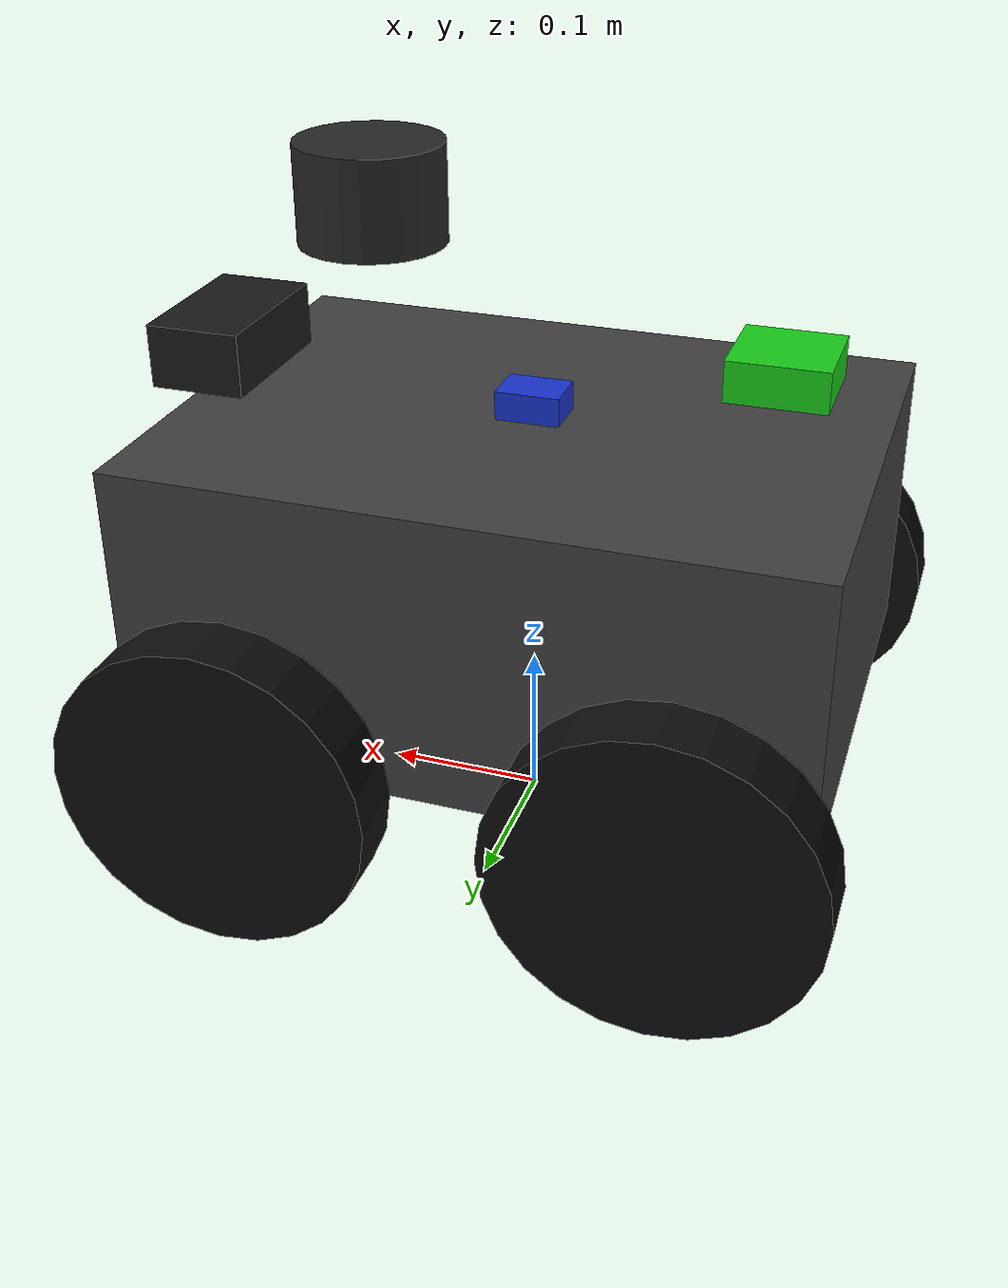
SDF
<?xml version="1.0"?>

<sdf version="1.10">

  <model name="ares_jackal">

    <pose>0 0 0 0 0 0</pose>

    <!-- CHASSIS                                               -->

    <link name="chassis_link">

      <pose>0 0 0.18 0 0 0</pose>

      <inertial>
        <mass>16.523</mass>

        <inertia>
          <ixx>0.3136</ixx>
          <iyy>0.3922</iyy>
          <izz>0.4485</izz>
          <ixy>0</ixy>
          <ixz>0</ixz>
          <iyz>0</iyz>
        </inertia>
      </inertial>

      <collision name="chassis_collision">

        <geometry>
          <box>
            <size>0.420 0.310 0.184</size>
          </box>
        </geometry>

      </collision>

      <visual name="chassis_visual">

        <geometry>
          <box>
            <size>0.420 0.310 0.184</size>
          </box>
        </geometry>

        <material>
          <ambient>0.25 0.25 0.25 1</ambient>
          <diffuse>0.25 0.25 0.25 1</diffuse>
        </material>

      </visual>

    </link>

    <!-- IMU                                                   -->

    <link name="imu_link">

      <!-- 10 cm above chassis frame -->
      <pose relative_to="chassis_link">
        0 0 0.10 0 0 0
      </pose>

      <inertial>
        <mass>0.05</mass>

        <inertia>
          <ixx>0.0001</ixx>
          <iyy>0.0001</iyy>
          <izz>0.0001</izz>
          <ixy>0</ixy>
          <ixz>0</ixz>
          <iyz>0</iyz>
        </inertia>
      </inertial>

      <visual name="imu_visual">

        <geometry>
          <box>
            <size>0.04 0.03 0.02</size>
          </box>
        </geometry>

        <material>
          <ambient>0.10 0.20 0.80 1</ambient>
          <diffuse>0.10 0.20 0.80 1</diffuse>
        </material>

      </visual>

      <sensor name="ares_imu" type="imu">

        <always_on>true</always_on>
        <update_rate>100</update_rate>

        <topic>/ares/imu</topic>

        <!-- Clean frame ID -->
        <frame_id>imu_link</frame_id>

        <imu>

          <angular_velocity>

            <x>
              <noise type="gaussian">
                <mean>0</mean>
                <stddev>0.0002</stddev>
              </noise>
            </x>

            <y>
              <noise type="gaussian">
                <mean>0</mean>
                <stddev>0.0002</stddev>
              </noise>
            </y>

            <z>
              <noise type="gaussian">
                <mean>0</mean>
                <stddev>0.0002</stddev>
              </noise>
            </z>

          </angular_velocity>

          <linear_acceleration>

            <x>
              <noise type="gaussian">
                <mean>0</mean>
                <stddev>0.01</stddev>
              </noise>
            </x>

            <y>
              <noise type="gaussian">
                <mean>0</mean>
                <stddev>0.01</stddev>
              </noise>
            </y>

            <z>
              <noise type="gaussian">
                <mean>0</mean>
                <stddev>0.01</stddev>
              </noise>
            </z>

          </linear_acceleration>

        </imu>

      </sensor>

    </link>

    <joint name="imu_joint" type="fixed">

      <parent>chassis_link</parent>
      <child>imu_link</child>

    </joint>

    <!-- 360 DEGREE LIDAR                                      -->

    <link name="lidar_link">

      <!-- front/top of chassis -->
      <pose relative_to="chassis_link">
        0.10 0 0.22 0 0 0
      </pose>

      <inertial>
        <mass>0.5</mass>

        <inertia>
          <ixx>0.001</ixx>
          <iyy>0.001</iyy>
          <izz>0.001</izz>
          <ixy>0</ixy>
          <ixz>0</ixz>
          <iyz>0</iyz>
        </inertia>
      </inertial>

      <visual name="lidar_visual">

        <geometry>
          <cylinder>
            <radius>0.045</radius>
            <length>0.06</length>
          </cylinder>
        </geometry>

        <material>
          <ambient>0.15 0.15 0.15 1</ambient>
          <diffuse>0.15 0.15 0.15 1</diffuse>
        </material>

      </visual>

      <sensor name="ares_lidar" type="gpu_lidar">

        <always_on>true</always_on>
        <update_rate>5</update_rate>

        <topic>/ares/scan</topic>

        <!-- Clean frame ID -->
        <frame_id>lidar_link</frame_id>

        <lidar>

          <scan>

            <horizontal>

              <!-- 360 points = approximately 1 degree each -->
              <samples>360</samples>

              <resolution>1</resolution>

              <min_angle>-3.14159265359</min_angle>
              <max_angle>3.14159265359</max_angle>

            </horizontal>

          </scan>

          <range>

            <min>0.12</min>
            <max>20.0</max>
            <resolution>0.01</resolution>

          </range>

          <noise>
            <type>gaussian</type>
            <mean>0.0</mean>
            <stddev>0.01</stddev>
          </noise>

        </lidar>

      </sensor>

    </link>

    <joint name="lidar_joint" type="fixed">

      <parent>chassis_link</parent>
      <child>lidar_link</child>

    </joint>

    <!-- RGB-D CAMERA                                          -->

    <link name="camera_link">

      <!-- front/top of chassis -->
      <pose relative_to="chassis_link">
        0.20 0 0.12 0 0 0
      </pose>

      <inertial>
        <mass>0.15</mass>

        <inertia>
          <ixx>0.0002</ixx>
          <iyy>0.0002</iyy>
          <izz>0.0002</izz>
          <ixy>0</ixy>
          <ixz>0</ixz>
          <iyz>0</iyz>
        </inertia>
      </inertial>

      <visual name="camera_visual">

        <geometry>
          <box>
            <size>0.06 0.10 0.04</size>
          </box>
        </geometry>

        <material>
          <ambient>0.10 0.10 0.10 1</ambient>
          <diffuse>0.10 0.10 0.10 1</diffuse>
        </material>

      </visual>

      <sensor name="ares_depth_camera"
              type="depth_camera">

        <always_on>false</always_on>
        <update_rate>5</update_rate>

        <topic>/ares/camera</topic>

        <!-- Clean frame ID -->
        <frame_id>camera_link</frame_id>

        <camera>

          <horizontal_fov>1.047</horizontal_fov>

          <image>
            <width>320</width>
            <height>240</height>
            <format>R8G8B8</format>
          </image>

          <clip>
            <near>0.10</near>
            <far>10.0</far>
          </clip>

          <depth_camera>

            <clip>
              <near>0.10</near>
              <far>10.0</far>
            </clip>

          </depth_camera>

        </camera>

      </sensor>

    </link>

    <joint name="camera_joint" type="fixed">

      <parent>chassis_link</parent>
      <child>camera_link</child>

    </joint>

    <!-- GNSS                                                  -->

    <link name="gps_link">

      <!-- rear/top -->
      <pose relative_to="chassis_link">
        -0.15 0 0.14 0 0 0
      </pose>

      <inertial>

        <mass>0.10</mass>

        <inertia>
          <ixx>0.0001</ixx>
          <iyy>0.0001</iyy>
          <izz>0.0001</izz>
          <ixy>0</ixy>
          <ixz>0</ixz>
          <iyz>0</iyz>
        </inertia>

      </inertial>

      <visual name="gps_visual">

        <geometry>
          <box>
            <size>0.06 0.06 0.025</size>
          </box>
        </geometry>

        <material>
          <ambient>0.10 0.80 0.10 1</ambient>
          <diffuse>0.10 0.80 0.10 1</diffuse>
        </material>

      </visual>

      <sensor name="ares_gnss" type="navsat">
        <always_on>true</always_on>
        <update_rate>10</update_rate>
        <topic>/ares/gps</topic>
        <frame_id>gps_link</frame_id>

        <navsat>
          <position_sensing>
            <horizontal>
              <noise type="gaussian">
                <mean>0</mean>
                <stddev>0.0000045</stddev>
              </noise>
            </horizontal>

            <vertical>
              <noise type="gaussian">
                <mean>0</mean>
                <stddev>1.0</stddev>
              </noise>
            </vertical>
          </position_sensing>

          <velocity_sensing>
            <horizontal>
              <noise type="gaussian">
                <mean>0</mean>
                <stddev>0.05</stddev>
              </noise>
            </horizontal>

            <vertical>
              <noise type="gaussian">
                <mean>0</mean>
                <stddev>0.10</stddev>
              </noise>
            </vertical>
          </velocity_sensing>
        </navsat>
      </sensor>

    </link>

    <joint name="gps_joint" type="fixed">

      <parent>chassis_link</parent>
      <child>gps_link</child>

    </joint>

    <!-- FRONT LEFT WHEEL                                      -->

    <link name="front_left_wheel_link">

      <pose>
        0.131 0.187795 0.098 0 0 0
      </pose>

      <inertial>

        <mass>0.477</mass>

        <inertia>
          <ixx>0.0013</ixx>
          <iyy>0.0024</iyy>
          <izz>0.0013</izz>
          <ixy>0</ixy>
          <ixz>0</ixz>
          <iyz>0</iyz>
        </inertia>

      </inertial>

      <collision name="collision">

        <!-- Only geometry is rotated.
             The wheel link itself remains unrotated. -->

        <pose>
          0 0 0 1.57079632679 0 0
        </pose>

        <geometry>

          <cylinder>
            <radius>0.098</radius>
            <length>0.040</length>
          </cylinder>

        </geometry>

      </collision>

      <visual name="visual">

        <pose>
          0 0 0 1.57079632679 0 0
        </pose>

        <geometry>

          <cylinder>
            <radius>0.098</radius>
            <length>0.040</length>
          </cylinder>

        </geometry>

        <material>
          <ambient>0.05 0.05 0.05 1</ambient>
          <diffuse>0.05 0.05 0.05 1</diffuse>
        </material>

      </visual>

    </link>

    <!-- FRONT RIGHT WHEEL                                     -->

    <link name="front_right_wheel_link">

      <pose>
        0.131 -0.187795 0.098 0 0 0
      </pose>

      <inertial>

        <mass>0.477</mass>

        <inertia>
          <ixx>0.0013</ixx>
          <iyy>0.0024</iyy>
          <izz>0.0013</izz>
          <ixy>0</ixy>
          <ixz>0</ixz>
          <iyz>0</iyz>
        </inertia>

      </inertial>

      <collision name="collision">

        <pose>
          0 0 0 1.57079632679 0 0
        </pose>

        <geometry>

          <cylinder>
            <radius>0.098</radius>
            <length>0.040</length>
          </cylinder>

        </geometry>

      </collision>

      <visual name="visual">

        <pose>
          0 0 0 1.57079632679 0 0
        </pose>

        <geometry>

          <cylinder>
            <radius>0.098</radius>
            <length>0.040</length>
          </cylinder>

        </geometry>

        <material>
          <ambient>0.05 0.05 0.05 1</ambient>
          <diffuse>0.05 0.05 0.05 1</diffuse>
        </material>

      </visual>

    </link>

    <!-- REAR LEFT WHEEL                                       -->

    <link name="rear_left_wheel_link">

      <pose>
        -0.131 0.187795 0.098 0 0 0
      </pose>

      <inertial>

        <mass>0.477</mass>

        <inertia>
          <ixx>0.0013</ixx>
          <iyy>0.0024</iyy>
          <izz>0.0013</izz>
          <ixy>0</ixy>
          <ixz>0</ixz>
          <iyz>0</iyz>
        </inertia>

      </inertial>

      <collision name="collision">

        <pose>
          0 0 0 1.57079632679 0 0
        </pose>

        <geometry>

          <cylinder>
            <radius>0.098</radius>
            <length>0.040</length>
          </cylinder>

        </geometry>

      </collision>

      <visual name="visual">

        <pose>
          0 0 0 1.57079632679 0 0
        </pose>

        <geometry>

          <cylinder>
            <radius>0.098</radius>
            <length>0.040</length>
          </cylinder>

        </geometry>

        <material>
          <ambient>0.05 0.05 0.05 1</ambient>
          <diffuse>0.05 0.05 0.05 1</diffuse>
        </material>

      </visual>

    </link>

    <!-- REAR RIGHT WHEEL                                      -->

    <link name="rear_right_wheel_link">

      <pose>
        -0.131 -0.187795 0.098 0 0 0
      </pose>

      <inertial>

        <mass>0.477</mass>

        <inertia>
          <ixx>0.0013</ixx>
          <iyy>0.0024</iyy>
          <izz>0.0013</izz>
          <ixy>0</ixy>
          <ixz>0</ixz>
          <iyz>0</iyz>
        </inertia>

      </inertial>

      <collision name="collision">

        <pose>
          0 0 0 1.57079632679 0 0
        </pose>

        <geometry>

          <cylinder>
            <radius>0.098</radius>
            <length>0.040</length>
          </cylinder>

        </geometry>

      </collision>

      <visual name="visual">

        <pose>
          0 0 0 1.57079632679 0 0
        </pose>

        <geometry>

          <cylinder>
            <radius>0.098</radius>
            <length>0.040</length>
          </cylinder>

        </geometry>

        <material>
          <ambient>0.05 0.05 0.05 1</ambient>
          <diffuse>0.05 0.05 0.05 1</diffuse>
        </material>

      </visual>

    </link>

    <!-- WHEEL JOINTS                                          -->

    <joint name="front_left_wheel_joint"
           type="revolute">

      <parent>chassis_link</parent>
      <child>front_left_wheel_link</child>

      <axis>

        <xyz>0 1 0</xyz>

        <dynamics>
          <damping>0.05</damping>
        </dynamics>

      </axis>

    </joint>

    <joint name="front_right_wheel_joint"
           type="revolute">

      <parent>chassis_link</parent>
      <child>front_right_wheel_link</child>

      <axis>

        <xyz>0 1 0</xyz>

        <dynamics>
          <damping>0.05</damping>
        </dynamics>

      </axis>

    </joint>

    <joint name="rear_left_wheel_joint"
           type="revolute">

      <parent>chassis_link</parent>
      <child>rear_left_wheel_link</child>

      <axis>

        <xyz>0 1 0</xyz>

        <dynamics>
          <damping>0.05</damping>
        </dynamics>

      </axis>

    </joint>

    <joint name="rear_right_wheel_joint"
           type="revolute">

      <parent>chassis_link</parent>
      <child>rear_right_wheel_link</child>

      <axis>

        <xyz>0 1 0</xyz>

        <dynamics>
          <damping>0.05</damping>
        </dynamics>

      </axis>

    </joint>

    <!-- DIFFERENTIAL DRIVE                                    -->

    <plugin
      filename="gz-sim-diff-drive-system"
      name="gz::sim::systems::DiffDrive">

      <!-- LEFT SIDE -->

      <left_joint>
        front_left_wheel_joint
      </left_joint>

      <left_joint>
        rear_left_wheel_joint
      </left_joint>

      <!-- RIGHT SIDE -->

      <right_joint>
        front_right_wheel_joint
      </right_joint>

      <right_joint>
        rear_right_wheel_joint
      </right_joint>

      <!-- JACKAL GEOMETRY -->

      <wheel_separation>
        0.37559
      </wheel_separation>

      <wheel_radius>
        0.098
      </wheel_radius>

      <!-- COMMAND -->

      <topic>
        /ares/cmd_vel
      </topic>

      <!-- ODOMETRY -->

      <odom_topic>
        /ares/odom
      </odom_topic>

      <!-- Gazebo transform stream -->
      <tf_topic>
        /ares/tf
      </tf_topic>

      <!-- Clean TF / odometry frame names -->
      <frame_id>
        odom
      </frame_id>

      <child_frame_id>
        base_footprint
      </child_frame_id>

      <odom_publish_frequency>
        50
      </odom_publish_frequency>

    </plugin>

  </model>

</sdf>
